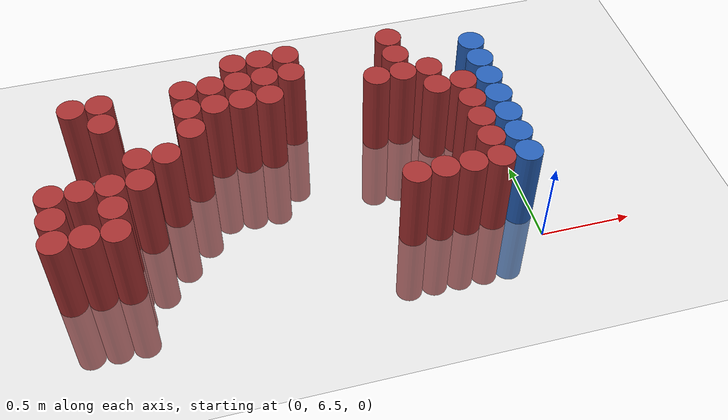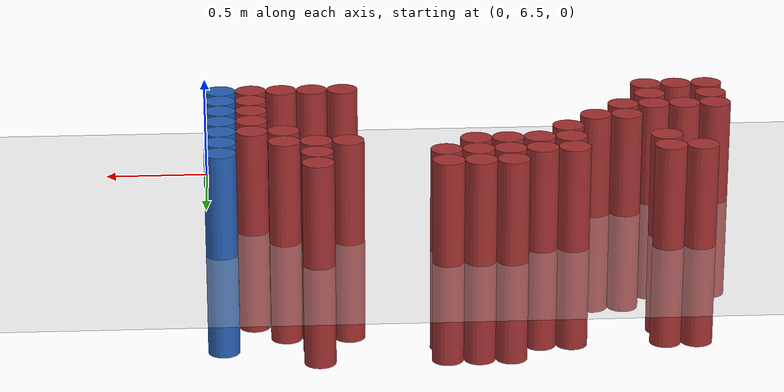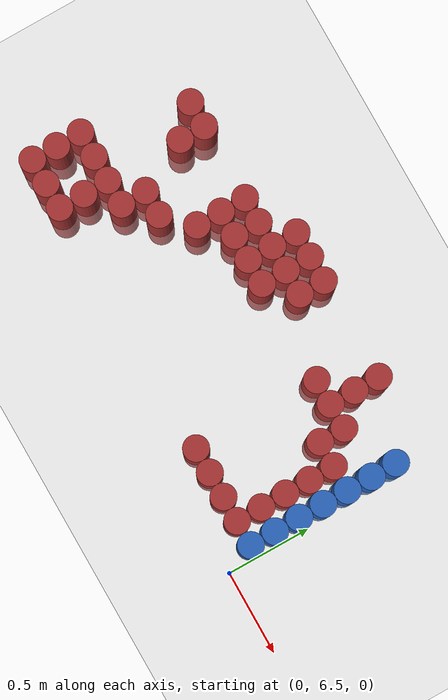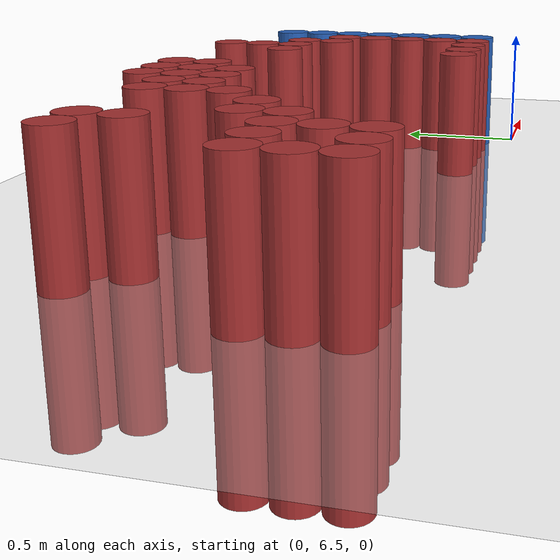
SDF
<sdf version="1.6">
 <world name="default">
  <model name="ground_plane">
   <static>1</static>
   <link name="link">
    <collision name="collision">
     <geometry><plane><normal>0 0 1</normal><size>100 100</size></plane></geometry>
     <surface><friction><ode><mu>100</mu><mu2>50</mu2></ode></friction></surface>
    </collision>
    <visual name="visual">
     <cast_shadows>0</cast_shadows>
     <geometry><plane><normal>0 0 1</normal><size>100 100</size></plane></geometry>
     <material>
      <script><uri>file://media/materials/scripts/gazebo.material</uri><name>Gazebo/Grey</name></script>
     </material>
    </visual>
   </link>
  </model>
  <model name="unit_cylinder_164">
   <static>1</static>
   <pose>-2.475000 6.675000 0.000000 0.000000 0.000000 0.000000</pose>
   <link name="link">
    <inertial>
     <mass>1</mass>
     <inertia><ixx>0.145833</ixx><ixy>0</ixy><ixz>0</ixz><iyy>0.145833</iyy><iyz>0</iyz><izz>0.125</izz></inertia>
    </inertial>
    <collision name="collision">
     <geometry><cylinder><radius>0.075000</radius><length>1</length></cylinder></geometry>
    </collision>
    <visual name="visual">
     <geometry><cylinder><radius>0.075000</radius><length>1</length></cylinder></geometry>
     <material>
      <ambient>0.648000 0.192000 0.192000 1</ambient>
      <diffuse>0.648000 0.192000 0.192000 1</diffuse>
     </material>
     <material>
      <script><name>Gazebo/Grey</name><uri>file://media/materials/scripts/gazebo.material</uri></script>
     </material>
    </visual>
   </link>
  </model>
  <model name="unit_cylinder_165">
   <static>1</static>
   <pose>-2.475000 6.825000 0.000000 0.000000 0.000000 0.000000</pose>
   <link name="link">
    <inertial>
     <mass>1</mass>
     <inertia><ixx>0.145833</ixx><ixy>0</ixy><ixz>0</ixz><iyy>0.145833</iyy><iyz>0</iyz><izz>0.125</izz></inertia>
    </inertial>
    <collision name="collision">
     <geometry><cylinder><radius>0.075000</radius><length>1</length></cylinder></geometry>
    </collision>
    <visual name="visual">
     <geometry><cylinder><radius>0.075000</radius><length>1</length></cylinder></geometry>
     <material>
      <ambient>0.648000 0.192000 0.192000 1</ambient>
      <diffuse>0.648000 0.192000 0.192000 1</diffuse>
     </material>
     <material>
      <script><name>Gazebo/Grey</name><uri>file://media/materials/scripts/gazebo.material</uri></script>
     </material>
    </visual>
   </link>
  </model>
  <model name="unit_cylinder_166">
   <static>1</static>
   <pose>-2.475000 6.975000 0.000000 0.000000 0.000000 0.000000</pose>
   <link name="link">
    <inertial>
     <mass>1</mass>
     <inertia><ixx>0.145833</ixx><ixy>0</ixy><ixz>0</ixz><iyy>0.145833</iyy><iyz>0</iyz><izz>0.125</izz></inertia>
    </inertial>
    <collision name="collision">
     <geometry><cylinder><radius>0.075000</radius><length>1</length></cylinder></geometry>
    </collision>
    <visual name="visual">
     <geometry><cylinder><radius>0.075000</radius><length>1</length></cylinder></geometry>
     <material>
      <ambient>0.648000 0.192000 0.192000 1</ambient>
      <diffuse>0.648000 0.192000 0.192000 1</diffuse>
     </material>
     <material>
      <script><name>Gazebo/Grey</name><uri>file://media/materials/scripts/gazebo.material</uri></script>
     </material>
    </visual>
   </link>
  </model>
  <model name="unit_cylinder_169">
   <static>1</static>
   <pose>-2.325000 6.675000 0.000000 0.000000 0.000000 0.000000</pose>
   <link name="link">
    <inertial>
     <mass>1</mass>
     <inertia><ixx>0.145833</ixx><ixy>0</ixy><ixz>0</ixz><iyy>0.145833</iyy><iyz>0</iyz><izz>0.125</izz></inertia>
    </inertial>
    <collision name="collision">
     <geometry><cylinder><radius>0.075000</radius><length>1</length></cylinder></geometry>
    </collision>
    <visual name="visual">
     <geometry><cylinder><radius>0.075000</radius><length>1</length></cylinder></geometry>
     <material>
      <ambient>0.648000 0.192000 0.192000 1</ambient>
      <diffuse>0.648000 0.192000 0.192000 1</diffuse>
     </material>
     <material>
      <script><name>Gazebo/Grey</name><uri>file://media/materials/scripts/gazebo.material</uri></script>
     </material>
    </visual>
   </link>
  </model>
  <model name="unit_cylinder_170">
   <static>1</static>
   <pose>-2.325000 6.975000 0.000000 0.000000 0.000000 0.000000</pose>
   <link name="link">
    <inertial>
     <mass>1</mass>
     <inertia><ixx>0.145833</ixx><ixy>0</ixy><ixz>0</ixz><iyy>0.145833</iyy><iyz>0</iyz><izz>0.125</izz></inertia>
    </inertial>
    <collision name="collision">
     <geometry><cylinder><radius>0.075000</radius><length>1</length></cylinder></geometry>
    </collision>
    <visual name="visual">
     <geometry><cylinder><radius>0.075000</radius><length>1</length></cylinder></geometry>
     <material>
      <ambient>0.648000 0.192000 0.192000 1</ambient>
      <diffuse>0.648000 0.192000 0.192000 1</diffuse>
     </material>
     <material>
      <script><name>Gazebo/Grey</name><uri>file://media/materials/scripts/gazebo.material</uri></script>
     </material>
    </visual>
   </link>
  </model>
  <model name="unit_cylinder_171">
   <static>1</static>
   <pose>-2.325000 7.575000 0.000000 0.000000 0.000000 0.000000</pose>
   <link name="link">
    <inertial>
     <mass>1</mass>
     <inertia><ixx>0.145833</ixx><ixy>0</ixy><ixz>0</ixz><iyy>0.145833</iyy><iyz>0</iyz><izz>0.125</izz></inertia>
    </inertial>
    <collision name="collision">
     <geometry><cylinder><radius>0.075000</radius><length>1</length></cylinder></geometry>
    </collision>
    <visual name="visual">
     <geometry><cylinder><radius>0.075000</radius><length>1</length></cylinder></geometry>
     <material>
      <ambient>0.648000 0.192000 0.192000 1</ambient>
      <diffuse>0.648000 0.192000 0.192000 1</diffuse>
     </material>
     <material>
      <script><name>Gazebo/Grey</name><uri>file://media/materials/scripts/gazebo.material</uri></script>
     </material>
    </visual>
   </link>
  </model>
  <model name="unit_cylinder_176">
   <static>1</static>
   <pose>-2.175000 6.675000 0.000000 0.000000 0.000000 0.000000</pose>
   <link name="link">
    <inertial>
     <mass>1</mass>
     <inertia><ixx>0.145833</ixx><ixy>0</ixy><ixz>0</ixz><iyy>0.145833</iyy><iyz>0</iyz><izz>0.125</izz></inertia>
    </inertial>
    <collision name="collision">
     <geometry><cylinder><radius>0.075000</radius><length>1</length></cylinder></geometry>
    </collision>
    <visual name="visual">
     <geometry><cylinder><radius>0.075000</radius><length>1</length></cylinder></geometry>
     <material>
      <ambient>0.648000 0.192000 0.192000 1</ambient>
      <diffuse>0.648000 0.192000 0.192000 1</diffuse>
     </material>
     <material>
      <script><name>Gazebo/Grey</name><uri>file://media/materials/scripts/gazebo.material</uri></script>
     </material>
    </visual>
   </link>
  </model>
  <model name="unit_cylinder_177">
   <static>1</static>
   <pose>-2.175000 6.825000 0.000000 0.000000 0.000000 0.000000</pose>
   <link name="link">
    <inertial>
     <mass>1</mass>
     <inertia><ixx>0.145833</ixx><ixy>0</ixy><ixz>0</ixz><iyy>0.145833</iyy><iyz>0</iyz><izz>0.125</izz></inertia>
    </inertial>
    <collision name="collision">
     <geometry><cylinder><radius>0.075000</radius><length>1</length></cylinder></geometry>
    </collision>
    <visual name="visual">
     <geometry><cylinder><radius>0.075000</radius><length>1</length></cylinder></geometry>
     <material>
      <ambient>0.648000 0.192000 0.192000 1</ambient>
      <diffuse>0.648000 0.192000 0.192000 1</diffuse>
     </material>
     <material>
      <script><name>Gazebo/Grey</name><uri>file://media/materials/scripts/gazebo.material</uri></script>
     </material>
    </visual>
   </link>
  </model>
  <model name="unit_cylinder_178">
   <static>1</static>
   <pose>-2.175000 6.975000 0.000000 0.000000 0.000000 0.000000</pose>
   <link name="link">
    <inertial>
     <mass>1</mass>
     <inertia><ixx>0.145833</ixx><ixy>0</ixy><ixz>0</ixz><iyy>0.145833</iyy><iyz>0</iyz><izz>0.125</izz></inertia>
    </inertial>
    <collision name="collision">
     <geometry><cylinder><radius>0.075000</radius><length>1</length></cylinder></geometry>
    </collision>
    <visual name="visual">
     <geometry><cylinder><radius>0.075000</radius><length>1</length></cylinder></geometry>
     <material>
      <ambient>0.648000 0.192000 0.192000 1</ambient>
      <diffuse>0.648000 0.192000 0.192000 1</diffuse>
     </material>
     <material>
      <script><name>Gazebo/Grey</name><uri>file://media/materials/scripts/gazebo.material</uri></script>
     </material>
    </visual>
   </link>
  </model>
  <model name="unit_cylinder_179">
   <static>1</static>
   <pose>-2.175000 7.425000 0.000000 0.000000 0.000000 0.000000</pose>
   <link name="link">
    <inertial>
     <mass>1</mass>
     <inertia><ixx>0.145833</ixx><ixy>0</ixy><ixz>0</ixz><iyy>0.145833</iyy><iyz>0</iyz><izz>0.125</izz></inertia>
    </inertial>
    <collision name="collision">
     <geometry><cylinder><radius>0.075000</radius><length>1</length></cylinder></geometry>
    </collision>
    <visual name="visual">
     <geometry><cylinder><radius>0.075000</radius><length>1</length></cylinder></geometry>
     <material>
      <ambient>0.648000 0.192000 0.192000 1</ambient>
      <diffuse>0.648000 0.192000 0.192000 1</diffuse>
     </material>
     <material>
      <script><name>Gazebo/Grey</name><uri>file://media/materials/scripts/gazebo.material</uri></script>
     </material>
    </visual>
   </link>
  </model>
  <model name="unit_cylinder_180">
   <static>1</static>
   <pose>-2.175000 7.575000 0.000000 0.000000 0.000000 0.000000</pose>
   <link name="link">
    <inertial>
     <mass>1</mass>
     <inertia><ixx>0.145833</ixx><ixy>0</ixy><ixz>0</ixz><iyy>0.145833</iyy><iyz>0</iyz><izz>0.125</izz></inertia>
    </inertial>
    <collision name="collision">
     <geometry><cylinder><radius>0.075000</radius><length>1</length></cylinder></geometry>
    </collision>
    <visual name="visual">
     <geometry><cylinder><radius>0.075000</radius><length>1</length></cylinder></geometry>
     <material>
      <ambient>0.648000 0.192000 0.192000 1</ambient>
      <diffuse>0.648000 0.192000 0.192000 1</diffuse>
     </material>
     <material>
      <script><name>Gazebo/Grey</name><uri>file://media/materials/scripts/gazebo.material</uri></script>
     </material>
    </visual>
   </link>
  </model>
  <model name="unit_cylinder_185">
   <static>1</static>
   <pose>-2.025000 6.975000 0.000000 0.000000 0.000000 0.000000</pose>
   <link name="link">
    <inertial>
     <mass>1</mass>
     <inertia><ixx>0.145833</ixx><ixy>0</ixy><ixz>0</ixz><iyy>0.145833</iyy><iyz>0</iyz><izz>0.125</izz></inertia>
    </inertial>
    <collision name="collision">
     <geometry><cylinder><radius>0.075000</radius><length>1</length></cylinder></geometry>
    </collision>
    <visual name="visual">
     <geometry><cylinder><radius>0.075000</radius><length>1</length></cylinder></geometry>
     <material>
      <ambient>0.648000 0.192000 0.192000 1</ambient>
      <diffuse>0.648000 0.192000 0.192000 1</diffuse>
     </material>
     <material>
      <script><name>Gazebo/Grey</name><uri>file://media/materials/scripts/gazebo.material</uri></script>
     </material>
    </visual>
   </link>
  </model>
  <model name="unit_cylinder_186">
   <static>1</static>
   <pose>-2.025000 7.125000 0.000000 0.000000 0.000000 0.000000</pose>
   <link name="link">
    <inertial>
     <mass>1</mass>
     <inertia><ixx>0.145833</ixx><ixy>0</ixy><ixz>0</ixz><iyy>0.145833</iyy><iyz>0</iyz><izz>0.125</izz></inertia>
    </inertial>
    <collision name="collision">
     <geometry><cylinder><radius>0.075000</radius><length>1</length></cylinder></geometry>
    </collision>
    <visual name="visual">
     <geometry><cylinder><radius>0.075000</radius><length>1</length></cylinder></geometry>
     <material>
      <ambient>0.648000 0.192000 0.192000 1</ambient>
      <diffuse>0.648000 0.192000 0.192000 1</diffuse>
     </material>
     <material>
      <script><name>Gazebo/Grey</name><uri>file://media/materials/scripts/gazebo.material</uri></script>
     </material>
    </visual>
   </link>
  </model>
  <model name="unit_cylinder_192">
   <static>1</static>
   <pose>-1.875000 7.125000 0.000000 0.000000 0.000000 0.000000</pose>
   <link name="link">
    <inertial>
     <mass>1</mass>
     <inertia><ixx>0.145833</ixx><ixy>0</ixy><ixz>0</ixz><iyy>0.145833</iyy><iyz>0</iyz><izz>0.125</izz></inertia>
    </inertial>
    <collision name="collision">
     <geometry><cylinder><radius>0.075000</radius><length>1</length></cylinder></geometry>
    </collision>
    <visual name="visual">
     <geometry><cylinder><radius>0.075000</radius><length>1</length></cylinder></geometry>
     <material>
      <ambient>0.648000 0.192000 0.192000 1</ambient>
      <diffuse>0.648000 0.192000 0.192000 1</diffuse>
     </material>
     <material>
      <script><name>Gazebo/Grey</name><uri>file://media/materials/scripts/gazebo.material</uri></script>
     </material>
    </visual>
   </link>
  </model>
  <model name="unit_cylinder_198">
   <static>1</static>
   <pose>-1.725000 7.275000 0.000000 0.000000 0.000000 0.000000</pose>
   <link name="link">
    <inertial>
     <mass>1</mass>
     <inertia><ixx>0.145833</ixx><ixy>0</ixy><ixz>0</ixz><iyy>0.145833</iyy><iyz>0</iyz><izz>0.125</izz></inertia>
    </inertial>
    <collision name="collision">
     <geometry><cylinder><radius>0.075000</radius><length>1</length></cylinder></geometry>
    </collision>
    <visual name="visual">
     <geometry><cylinder><radius>0.075000</radius><length>1</length></cylinder></geometry>
     <material>
      <ambient>0.648000 0.192000 0.192000 1</ambient>
      <diffuse>0.648000 0.192000 0.192000 1</diffuse>
     </material>
     <material>
      <script><name>Gazebo/Grey</name><uri>file://media/materials/scripts/gazebo.material</uri></script>
     </material>
    </visual>
   </link>
  </model>
  <model name="unit_cylinder_199">
   <static>1</static>
   <pose>-1.725000 7.425000 0.000000 0.000000 0.000000 0.000000</pose>
   <link name="link">
    <inertial>
     <mass>1</mass>
     <inertia><ixx>0.145833</ixx><ixy>0</ixy><ixz>0</ixz><iyy>0.145833</iyy><iyz>0</iyz><izz>0.125</izz></inertia>
    </inertial>
    <collision name="collision">
     <geometry><cylinder><radius>0.075000</radius><length>1</length></cylinder></geometry>
    </collision>
    <visual name="visual">
     <geometry><cylinder><radius>0.075000</radius><length>1</length></cylinder></geometry>
     <material>
      <ambient>0.648000 0.192000 0.192000 1</ambient>
      <diffuse>0.648000 0.192000 0.192000 1</diffuse>
     </material>
     <material>
      <script><name>Gazebo/Grey</name><uri>file://media/materials/scripts/gazebo.material</uri></script>
     </material>
    </visual>
   </link>
  </model>
  <model name="unit_cylinder_200">
   <static>1</static>
   <pose>-1.725000 7.575000 0.000000 0.000000 0.000000 0.000000</pose>
   <link name="link">
    <inertial>
     <mass>1</mass>
     <inertia><ixx>0.145833</ixx><ixy>0</ixy><ixz>0</ixz><iyy>0.145833</iyy><iyz>0</iyz><izz>0.125</izz></inertia>
    </inertial>
    <collision name="collision">
     <geometry><cylinder><radius>0.075000</radius><length>1</length></cylinder></geometry>
    </collision>
    <visual name="visual">
     <geometry><cylinder><radius>0.075000</radius><length>1</length></cylinder></geometry>
     <material>
      <ambient>0.648000 0.192000 0.192000 1</ambient>
      <diffuse>0.648000 0.192000 0.192000 1</diffuse>
     </material>
     <material>
      <script><name>Gazebo/Grey</name><uri>file://media/materials/scripts/gazebo.material</uri></script>
     </material>
    </visual>
   </link>
  </model>
  <model name="unit_cylinder_201">
   <static>1</static>
   <pose>-1.575000 7.425000 0.000000 0.000000 0.000000 0.000000</pose>
   <link name="link">
    <inertial>
     <mass>1</mass>
     <inertia><ixx>0.145833</ixx><ixy>0</ixy><ixz>0</ixz><iyy>0.145833</iyy><iyz>0</iyz><izz>0.125</izz></inertia>
    </inertial>
    <collision name="collision">
     <geometry><cylinder><radius>0.075000</radius><length>1</length></cylinder></geometry>
    </collision>
    <visual name="visual">
     <geometry><cylinder><radius>0.075000</radius><length>1</length></cylinder></geometry>
     <material>
      <ambient>0.648000 0.192000 0.192000 1</ambient>
      <diffuse>0.648000 0.192000 0.192000 1</diffuse>
     </material>
     <material>
      <script><name>Gazebo/Grey</name><uri>file://media/materials/scripts/gazebo.material</uri></script>
     </material>
    </visual>
   </link>
  </model>
  <model name="unit_cylinder_202">
   <static>1</static>
   <pose>-1.575000 7.575000 0.000000 0.000000 0.000000 0.000000</pose>
   <link name="link">
    <inertial>
     <mass>1</mass>
     <inertia><ixx>0.145833</ixx><ixy>0</ixy><ixz>0</ixz><iyy>0.145833</iyy><iyz>0</iyz><izz>0.125</izz></inertia>
    </inertial>
    <collision name="collision">
     <geometry><cylinder><radius>0.075000</radius><length>1</length></cylinder></geometry>
    </collision>
    <visual name="visual">
     <geometry><cylinder><radius>0.075000</radius><length>1</length></cylinder></geometry>
     <material>
      <ambient>0.648000 0.192000 0.192000 1</ambient>
      <diffuse>0.648000 0.192000 0.192000 1</diffuse>
     </material>
     <material>
      <script><name>Gazebo/Grey</name><uri>file://media/materials/scripts/gazebo.material</uri></script>
     </material>
    </visual>
   </link>
  </model>
  <model name="unit_cylinder_203">
   <static>1</static>
   <pose>-1.425000 7.425000 0.000000 0.000000 0.000000 0.000000</pose>
   <link name="link">
    <inertial>
     <mass>1</mass>
     <inertia><ixx>0.145833</ixx><ixy>0</ixy><ixz>0</ixz><iyy>0.145833</iyy><iyz>0</iyz><izz>0.125</izz></inertia>
    </inertial>
    <collision name="collision">
     <geometry><cylinder><radius>0.075000</radius><length>1</length></cylinder></geometry>
    </collision>
    <visual name="visual">
     <geometry><cylinder><radius>0.075000</radius><length>1</length></cylinder></geometry>
     <material>
      <ambient>0.648000 0.192000 0.192000 1</ambient>
      <diffuse>0.648000 0.192000 0.192000 1</diffuse>
     </material>
     <material>
      <script><name>Gazebo/Grey</name><uri>file://media/materials/scripts/gazebo.material</uri></script>
     </material>
    </visual>
   </link>
  </model>
  <model name="unit_cylinder_204">
   <static>1</static>
   <pose>-1.425000 7.575000 0.000000 0.000000 0.000000 0.000000</pose>
   <link name="link">
    <inertial>
     <mass>1</mass>
     <inertia><ixx>0.145833</ixx><ixy>0</ixy><ixz>0</ixz><iyy>0.145833</iyy><iyz>0</iyz><izz>0.125</izz></inertia>
    </inertial>
    <collision name="collision">
     <geometry><cylinder><radius>0.075000</radius><length>1</length></cylinder></geometry>
    </collision>
    <visual name="visual">
     <geometry><cylinder><radius>0.075000</radius><length>1</length></cylinder></geometry>
     <material>
      <ambient>0.648000 0.192000 0.192000 1</ambient>
      <diffuse>0.648000 0.192000 0.192000 1</diffuse>
     </material>
     <material>
      <script><name>Gazebo/Grey</name><uri>file://media/materials/scripts/gazebo.material</uri></script>
     </material>
    </visual>
   </link>
  </model>
  <model name="unit_cylinder_205">
   <static>1</static>
   <pose>-1.425000 7.725000 0.000000 0.000000 0.000000 0.000000</pose>
   <link name="link">
    <inertial>
     <mass>1</mass>
     <inertia><ixx>0.145833</ixx><ixy>0</ixy><ixz>0</ixz><iyy>0.145833</iyy><iyz>0</iyz><izz>0.125</izz></inertia>
    </inertial>
    <collision name="collision">
     <geometry><cylinder><radius>0.075000</radius><length>1</length></cylinder></geometry>
    </collision>
    <visual name="visual">
     <geometry><cylinder><radius>0.075000</radius><length>1</length></cylinder></geometry>
     <material>
      <ambient>0.648000 0.192000 0.192000 1</ambient>
      <diffuse>0.648000 0.192000 0.192000 1</diffuse>
     </material>
     <material>
      <script><name>Gazebo/Grey</name><uri>file://media/materials/scripts/gazebo.material</uri></script>
     </material>
    </visual>
   </link>
  </model>
  <model name="unit_cylinder_206">
   <static>1</static>
   <pose>-1.275000 7.425000 0.000000 0.000000 0.000000 0.000000</pose>
   <link name="link">
    <inertial>
     <mass>1</mass>
     <inertia><ixx>0.145833</ixx><ixy>0</ixy><ixz>0</ixz><iyy>0.145833</iyy><iyz>0</iyz><izz>0.125</izz></inertia>
    </inertial>
    <collision name="collision">
     <geometry><cylinder><radius>0.075000</radius><length>1</length></cylinder></geometry>
    </collision>
    <visual name="visual">
     <geometry><cylinder><radius>0.075000</radius><length>1</length></cylinder></geometry>
     <material>
      <ambient>0.648000 0.192000 0.192000 1</ambient>
      <diffuse>0.648000 0.192000 0.192000 1</diffuse>
     </material>
     <material>
      <script><name>Gazebo/Grey</name><uri>file://media/materials/scripts/gazebo.material</uri></script>
     </material>
    </visual>
   </link>
  </model>
  <model name="unit_cylinder_207">
   <static>1</static>
   <pose>-1.275000 7.575000 0.000000 0.000000 0.000000 0.000000</pose>
   <link name="link">
    <inertial>
     <mass>1</mass>
     <inertia><ixx>0.145833</ixx><ixy>0</ixy><ixz>0</ixz><iyy>0.145833</iyy><iyz>0</iyz><izz>0.125</izz></inertia>
    </inertial>
    <collision name="collision">
     <geometry><cylinder><radius>0.075000</radius><length>1</length></cylinder></geometry>
    </collision>
    <visual name="visual">
     <geometry><cylinder><radius>0.075000</radius><length>1</length></cylinder></geometry>
     <material>
      <ambient>0.648000 0.192000 0.192000 1</ambient>
      <diffuse>0.648000 0.192000 0.192000 1</diffuse>
     </material>
     <material>
      <script><name>Gazebo/Grey</name><uri>file://media/materials/scripts/gazebo.material</uri></script>
     </material>
    </visual>
   </link>
  </model>
  <model name="unit_cylinder_208">
   <static>1</static>
   <pose>-1.275000 7.725000 0.000000 0.000000 0.000000 0.000000</pose>
   <link name="link">
    <inertial>
     <mass>1</mass>
     <inertia><ixx>0.145833</ixx><ixy>0</ixy><ixz>0</ixz><iyy>0.145833</iyy><iyz>0</iyz><izz>0.125</izz></inertia>
    </inertial>
    <collision name="collision">
     <geometry><cylinder><radius>0.075000</radius><length>1</length></cylinder></geometry>
    </collision>
    <visual name="visual">
     <geometry><cylinder><radius>0.075000</radius><length>1</length></cylinder></geometry>
     <material>
      <ambient>0.648000 0.192000 0.192000 1</ambient>
      <diffuse>0.648000 0.192000 0.192000 1</diffuse>
     </material>
     <material>
      <script><name>Gazebo/Grey</name><uri>file://media/materials/scripts/gazebo.material</uri></script>
     </material>
    </visual>
   </link>
  </model>
  <model name="unit_cylinder_209">
   <static>1</static>
   <pose>-1.125000 7.575000 0.000000 0.000000 0.000000 0.000000</pose>
   <link name="link">
    <inertial>
     <mass>1</mass>
     <inertia><ixx>0.145833</ixx><ixy>0</ixy><ixz>0</ixz><iyy>0.145833</iyy><iyz>0</iyz><izz>0.125</izz></inertia>
    </inertial>
    <collision name="collision">
     <geometry><cylinder><radius>0.075000</radius><length>1</length></cylinder></geometry>
    </collision>
    <visual name="visual">
     <geometry><cylinder><radius>0.075000</radius><length>1</length></cylinder></geometry>
     <material>
      <ambient>0.648000 0.192000 0.192000 1</ambient>
      <diffuse>0.648000 0.192000 0.192000 1</diffuse>
     </material>
     <material>
      <script><name>Gazebo/Grey</name><uri>file://media/materials/scripts/gazebo.material</uri></script>
     </material>
    </visual>
   </link>
  </model>
  <model name="unit_cylinder_210">
   <static>1</static>
   <pose>-1.125000 7.725000 0.000000 0.000000 0.000000 0.000000</pose>
   <link name="link">
    <inertial>
     <mass>1</mass>
     <inertia><ixx>0.145833</ixx><ixy>0</ixy><ixz>0</ixz><iyy>0.145833</iyy><iyz>0</iyz><izz>0.125</izz></inertia>
    </inertial>
    <collision name="collision">
     <geometry><cylinder><radius>0.075000</radius><length>1</length></cylinder></geometry>
    </collision>
    <visual name="visual">
     <geometry><cylinder><radius>0.075000</radius><length>1</length></cylinder></geometry>
     <material>
      <ambient>0.648000 0.192000 0.192000 1</ambient>
      <diffuse>0.648000 0.192000 0.192000 1</diffuse>
     </material>
     <material>
      <script><name>Gazebo/Grey</name><uri>file://media/materials/scripts/gazebo.material</uri></script>
     </material>
    </visual>
   </link>
  </model>
  <model name="unit_cylinder_216">
   <static>1</static>
   <pose>-0.675000 6.675000 0.000000 0.000000 0.000000 0.000000</pose>
   <link name="link">
    <inertial>
     <mass>1</mass>
     <inertia><ixx>0.145833</ixx><ixy>0</ixy><ixz>0</ixz><iyy>0.145833</iyy><iyz>0</iyz><izz>0.125</izz></inertia>
    </inertial>
    <collision name="collision">
     <geometry><cylinder><radius>0.075000</radius><length>1</length></cylinder></geometry>
    </collision>
    <visual name="visual">
     <geometry><cylinder><radius>0.075000</radius><length>1</length></cylinder></geometry>
     <material>
      <ambient>0.648000 0.192000 0.192000 1</ambient>
      <diffuse>0.648000 0.192000 0.192000 1</diffuse>
     </material>
     <material>
      <script><name>Gazebo/Grey</name><uri>file://media/materials/scripts/gazebo.material</uri></script>
     </material>
    </visual>
   </link>
  </model>
  <model name="unit_cylinder_217">
   <static>1</static>
   <pose>-0.675000 7.425000 0.000000 0.000000 0.000000 0.000000</pose>
   <link name="link">
    <inertial>
     <mass>1</mass>
     <inertia><ixx>0.145833</ixx><ixy>0</ixy><ixz>0</ixz><iyy>0.145833</iyy><iyz>0</iyz><izz>0.125</izz></inertia>
    </inertial>
    <collision name="collision">
     <geometry><cylinder><radius>0.075000</radius><length>1</length></cylinder></geometry>
    </collision>
    <visual name="visual">
     <geometry><cylinder><radius>0.075000</radius><length>1</length></cylinder></geometry>
     <material>
      <ambient>0.648000 0.192000 0.192000 1</ambient>
      <diffuse>0.648000 0.192000 0.192000 1</diffuse>
     </material>
     <material>
      <script><name>Gazebo/Grey</name><uri>file://media/materials/scripts/gazebo.material</uri></script>
     </material>
    </visual>
   </link>
  </model>
  <model name="unit_cylinder_225">
   <static>1</static>
   <pose>-0.525000 6.675000 0.000000 0.000000 0.000000 0.000000</pose>
   <link name="link">
    <inertial>
     <mass>1</mass>
     <inertia><ixx>0.145833</ixx><ixy>0</ixy><ixz>0</ixz><iyy>0.145833</iyy><iyz>0</iyz><izz>0.125</izz></inertia>
    </inertial>
    <collision name="collision">
     <geometry><cylinder><radius>0.075000</radius><length>1</length></cylinder></geometry>
    </collision>
    <visual name="visual">
     <geometry><cylinder><radius>0.075000</radius><length>1</length></cylinder></geometry>
     <material>
      <ambient>0.648000 0.192000 0.192000 1</ambient>
      <diffuse>0.648000 0.192000 0.192000 1</diffuse>
     </material>
     <material>
      <script><name>Gazebo/Grey</name><uri>file://media/materials/scripts/gazebo.material</uri></script>
     </material>
    </visual>
   </link>
  </model>
  <model name="unit_cylinder_226">
   <static>1</static>
   <pose>-0.525000 7.425000 0.000000 0.000000 0.000000 0.000000</pose>
   <link name="link">
    <inertial>
     <mass>1</mass>
     <inertia><ixx>0.145833</ixx><ixy>0</ixy><ixz>0</ixz><iyy>0.145833</iyy><iyz>0</iyz><izz>0.125</izz></inertia>
    </inertial>
    <collision name="collision">
     <geometry><cylinder><radius>0.075000</radius><length>1</length></cylinder></geometry>
    </collision>
    <visual name="visual">
     <geometry><cylinder><radius>0.075000</radius><length>1</length></cylinder></geometry>
     <material>
      <ambient>0.648000 0.192000 0.192000 1</ambient>
      <diffuse>0.648000 0.192000 0.192000 1</diffuse>
     </material>
     <material>
      <script><name>Gazebo/Grey</name><uri>file://media/materials/scripts/gazebo.material</uri></script>
     </material>
    </visual>
   </link>
  </model>
  <model name="unit_cylinder_227">
   <static>1</static>
   <pose>-0.525000 7.575000 0.000000 0.000000 0.000000 0.000000</pose>
   <link name="link">
    <inertial>
     <mass>1</mass>
     <inertia><ixx>0.145833</ixx><ixy>0</ixy><ixz>0</ixz><iyy>0.145833</iyy><iyz>0</iyz><izz>0.125</izz></inertia>
    </inertial>
    <collision name="collision">
     <geometry><cylinder><radius>0.075000</radius><length>1</length></cylinder></geometry>
    </collision>
    <visual name="visual">
     <geometry><cylinder><radius>0.075000</radius><length>1</length></cylinder></geometry>
     <material>
      <ambient>0.648000 0.192000 0.192000 1</ambient>
      <diffuse>0.648000 0.192000 0.192000 1</diffuse>
     </material>
     <material>
      <script><name>Gazebo/Grey</name><uri>file://media/materials/scripts/gazebo.material</uri></script>
     </material>
    </visual>
   </link>
  </model>
  <model name="unit_cylinder_228">
   <static>1</static>
   <pose>-0.525000 7.725000 0.000000 0.000000 0.000000 0.000000</pose>
   <link name="link">
    <inertial>
     <mass>1</mass>
     <inertia><ixx>0.145833</ixx><ixy>0</ixy><ixz>0</ixz><iyy>0.145833</iyy><iyz>0</iyz><izz>0.125</izz></inertia>
    </inertial>
    <collision name="collision">
     <geometry><cylinder><radius>0.075000</radius><length>1</length></cylinder></geometry>
    </collision>
    <visual name="visual">
     <geometry><cylinder><radius>0.075000</radius><length>1</length></cylinder></geometry>
     <material>
      <ambient>0.648000 0.192000 0.192000 1</ambient>
      <diffuse>0.648000 0.192000 0.192000 1</diffuse>
     </material>
     <material>
      <script><name>Gazebo/Grey</name><uri>file://media/materials/scripts/gazebo.material</uri></script>
     </material>
    </visual>
   </link>
  </model>
  <model name="unit_cylinder_236">
   <static>1</static>
   <pose>-0.375000 6.675000 0.000000 0.000000 0.000000 0.000000</pose>
   <link name="link">
    <inertial>
     <mass>1</mass>
     <inertia><ixx>0.145833</ixx><ixy>0</ixy><ixz>0</ixz><iyy>0.145833</iyy><iyz>0</iyz><izz>0.125</izz></inertia>
    </inertial>
    <collision name="collision">
     <geometry><cylinder><radius>0.075000</radius><length>1</length></cylinder></geometry>
    </collision>
    <visual name="visual">
     <geometry><cylinder><radius>0.075000</radius><length>1</length></cylinder></geometry>
     <material>
      <ambient>0.648000 0.192000 0.192000 1</ambient>
      <diffuse>0.648000 0.192000 0.192000 1</diffuse>
     </material>
     <material>
      <script><name>Gazebo/Grey</name><uri>file://media/materials/scripts/gazebo.material</uri></script>
     </material>
    </visual>
   </link>
  </model>
  <model name="unit_cylinder_237">
   <static>1</static>
   <pose>-0.375000 7.275000 0.000000 0.000000 0.000000 0.000000</pose>
   <link name="link">
    <inertial>
     <mass>1</mass>
     <inertia><ixx>0.145833</ixx><ixy>0</ixy><ixz>0</ixz><iyy>0.145833</iyy><iyz>0</iyz><izz>0.125</izz></inertia>
    </inertial>
    <collision name="collision">
     <geometry><cylinder><radius>0.075000</radius><length>1</length></cylinder></geometry>
    </collision>
    <visual name="visual">
     <geometry><cylinder><radius>0.075000</radius><length>1</length></cylinder></geometry>
     <material>
      <ambient>0.648000 0.192000 0.192000 1</ambient>
      <diffuse>0.648000 0.192000 0.192000 1</diffuse>
     </material>
     <material>
      <script><name>Gazebo/Grey</name><uri>file://media/materials/scripts/gazebo.material</uri></script>
     </material>
    </visual>
   </link>
  </model>
  <model name="unit_cylinder_238">
   <static>1</static>
   <pose>-0.375000 7.425000 0.000000 0.000000 0.000000 0.000000</pose>
   <link name="link">
    <inertial>
     <mass>1</mass>
     <inertia><ixx>0.145833</ixx><ixy>0</ixy><ixz>0</ixz><iyy>0.145833</iyy><iyz>0</iyz><izz>0.125</izz></inertia>
    </inertial>
    <collision name="collision">
     <geometry><cylinder><radius>0.075000</radius><length>1</length></cylinder></geometry>
    </collision>
    <visual name="visual">
     <geometry><cylinder><radius>0.075000</radius><length>1</length></cylinder></geometry>
     <material>
      <ambient>0.648000 0.192000 0.192000 1</ambient>
      <diffuse>0.648000 0.192000 0.192000 1</diffuse>
     </material>
     <material>
      <script><name>Gazebo/Grey</name><uri>file://media/materials/scripts/gazebo.material</uri></script>
     </material>
    </visual>
   </link>
  </model>
  <model name="unit_cylinder_248">
   <static>1</static>
   <pose>-0.225000 6.675000 0.000000 0.000000 0.000000 0.000000</pose>
   <link name="link">
    <inertial>
     <mass>1</mass>
     <inertia><ixx>0.145833</ixx><ixy>0</ixy><ixz>0</ixz><iyy>0.145833</iyy><iyz>0</iyz><izz>0.125</izz></inertia>
    </inertial>
    <collision name="collision">
     <geometry><cylinder><radius>0.075000</radius><length>1</length></cylinder></geometry>
    </collision>
    <visual name="visual">
     <geometry><cylinder><radius>0.075000</radius><length>1</length></cylinder></geometry>
     <material>
      <ambient>0.648000 0.192000 0.192000 1</ambient>
      <diffuse>0.648000 0.192000 0.192000 1</diffuse>
     </material>
     <material>
      <script><name>Gazebo/Grey</name><uri>file://media/materials/scripts/gazebo.material</uri></script>
     </material>
    </visual>
   </link>
  </model>
  <model name="unit_cylinder_249">
   <static>1</static>
   <pose>-0.225000 6.825000 0.000000 0.000000 0.000000 0.000000</pose>
   <link name="link">
    <inertial>
     <mass>1</mass>
     <inertia><ixx>0.145833</ixx><ixy>0</ixy><ixz>0</ixz><iyy>0.145833</iyy><iyz>0</iyz><izz>0.125</izz></inertia>
    </inertial>
    <collision name="collision">
     <geometry><cylinder><radius>0.075000</radius><length>1</length></cylinder></geometry>
    </collision>
    <visual name="visual">
     <geometry><cylinder><radius>0.075000</radius><length>1</length></cylinder></geometry>
     <material>
      <ambient>0.648000 0.192000 0.192000 1</ambient>
      <diffuse>0.648000 0.192000 0.192000 1</diffuse>
     </material>
     <material>
      <script><name>Gazebo/Grey</name><uri>file://media/materials/scripts/gazebo.material</uri></script>
     </material>
    </visual>
   </link>
  </model>
  <model name="unit_cylinder_250">
   <static>1</static>
   <pose>-0.225000 6.975000 0.000000 0.000000 0.000000 0.000000</pose>
   <link name="link">
    <inertial>
     <mass>1</mass>
     <inertia><ixx>0.145833</ixx><ixy>0</ixy><ixz>0</ixz><iyy>0.145833</iyy><iyz>0</iyz><izz>0.125</izz></inertia>
    </inertial>
    <collision name="collision">
     <geometry><cylinder><radius>0.075000</radius><length>1</length></cylinder></geometry>
    </collision>
    <visual name="visual">
     <geometry><cylinder><radius>0.075000</radius><length>1</length></cylinder></geometry>
     <material>
      <ambient>0.648000 0.192000 0.192000 1</ambient>
      <diffuse>0.648000 0.192000 0.192000 1</diffuse>
     </material>
     <material>
      <script><name>Gazebo/Grey</name><uri>file://media/materials/scripts/gazebo.material</uri></script>
     </material>
    </visual>
   </link>
  </model>
  <model name="unit_cylinder_251">
   <static>1</static>
   <pose>-0.225000 7.125000 0.000000 0.000000 0.000000 0.000000</pose>
   <link name="link">
    <inertial>
     <mass>1</mass>
     <inertia><ixx>0.145833</ixx><ixy>0</ixy><ixz>0</ixz><iyy>0.145833</iyy><iyz>0</iyz><izz>0.125</izz></inertia>
    </inertial>
    <collision name="collision">
     <geometry><cylinder><radius>0.075000</radius><length>1</length></cylinder></geometry>
    </collision>
    <visual name="visual">
     <geometry><cylinder><radius>0.075000</radius><length>1</length></cylinder></geometry>
     <material>
      <ambient>0.648000 0.192000 0.192000 1</ambient>
      <diffuse>0.648000 0.192000 0.192000 1</diffuse>
     </material>
     <material>
      <script><name>Gazebo/Grey</name><uri>file://media/materials/scripts/gazebo.material</uri></script>
     </material>
    </visual>
   </link>
  </model>
  <model name="unit_cylinder_252">
   <static>1</static>
   <pose>-0.225000 7.275000 0.000000 0.000000 0.000000 0.000000</pose>
   <link name="link">
    <inertial>
     <mass>1</mass>
     <inertia><ixx>0.145833</ixx><ixy>0</ixy><ixz>0</ixz><iyy>0.145833</iyy><iyz>0</iyz><izz>0.125</izz></inertia>
    </inertial>
    <collision name="collision">
     <geometry><cylinder><radius>0.075000</radius><length>1</length></cylinder></geometry>
    </collision>
    <visual name="visual">
     <geometry><cylinder><radius>0.075000</radius><length>1</length></cylinder></geometry>
     <material>
      <ambient>0.648000 0.192000 0.192000 1</ambient>
      <diffuse>0.648000 0.192000 0.192000 1</diffuse>
     </material>
     <material>
      <script><name>Gazebo/Grey</name><uri>file://media/materials/scripts/gazebo.material</uri></script>
     </material>
    </visual>
   </link>
  </model>
  <model name="unit_cylinder_269">
   <static>1</static>
   <pose>-0.075000 6.675000 0.000000 0.000000 0.000000 0.000000</pose>
   <link name="link">
    <inertial>
     <mass>1</mass>
     <inertia><ixx>0.145833</ixx><ixy>0</ixy><ixz>0</ixz><iyy>0.145833</iyy><iyz>0</iyz><izz>0.125</izz></inertia>
    </inertial>
    <collision name="collision">
     <geometry><cylinder><radius>0.075000</radius><length>1</length></cylinder></geometry>
    </collision>
    <visual name="visual">
     <geometry><cylinder><radius>0.075000</radius><length>1</length></cylinder></geometry>
     <material>
      <ambient>0.152000 0.379000 0.720000 1</ambient>
      <diffuse>0.152000 0.379000 0.720000 1</diffuse>
     </material>
     <material>
      <script><name>Gazebo/Grey</name><uri>file://media/materials/scripts/gazebo.material</uri></script>
     </material>
    </visual>
   </link>
  </model>
  <model name="unit_cylinder_270">
   <static>1</static>
   <pose>-0.075000 6.825000 0.000000 0.000000 0.000000 0.000000</pose>
   <link name="link">
    <inertial>
     <mass>1</mass>
     <inertia><ixx>0.145833</ixx><ixy>0</ixy><ixz>0</ixz><iyy>0.145833</iyy><iyz>0</iyz><izz>0.125</izz></inertia>
    </inertial>
    <collision name="collision">
     <geometry><cylinder><radius>0.075000</radius><length>1</length></cylinder></geometry>
    </collision>
    <visual name="visual">
     <geometry><cylinder><radius>0.075000</radius><length>1</length></cylinder></geometry>
     <material>
      <ambient>0.152000 0.379000 0.720000 1</ambient>
      <diffuse>0.152000 0.379000 0.720000 1</diffuse>
     </material>
     <material>
      <script><name>Gazebo/Grey</name><uri>file://media/materials/scripts/gazebo.material</uri></script>
     </material>
    </visual>
   </link>
  </model>
  <model name="unit_cylinder_271">
   <static>1</static>
   <pose>-0.075000 6.975000 0.000000 0.000000 0.000000 0.000000</pose>
   <link name="link">
    <inertial>
     <mass>1</mass>
     <inertia><ixx>0.145833</ixx><ixy>0</ixy><ixz>0</ixz><iyy>0.145833</iyy><iyz>0</iyz><izz>0.125</izz></inertia>
    </inertial>
    <collision name="collision">
     <geometry><cylinder><radius>0.075000</radius><length>1</length></cylinder></geometry>
    </collision>
    <visual name="visual">
     <geometry><cylinder><radius>0.075000</radius><length>1</length></cylinder></geometry>
     <material>
      <ambient>0.152000 0.379000 0.720000 1</ambient>
      <diffuse>0.152000 0.379000 0.720000 1</diffuse>
     </material>
     <material>
      <script><name>Gazebo/Grey</name><uri>file://media/materials/scripts/gazebo.material</uri></script>
     </material>
    </visual>
   </link>
  </model>
  <model name="unit_cylinder_272">
   <static>1</static>
   <pose>-0.075000 7.125000 0.000000 0.000000 0.000000 0.000000</pose>
   <link name="link">
    <inertial>
     <mass>1</mass>
     <inertia><ixx>0.145833</ixx><ixy>0</ixy><ixz>0</ixz><iyy>0.145833</iyy><iyz>0</iyz><izz>0.125</izz></inertia>
    </inertial>
    <collision name="collision">
     <geometry><cylinder><radius>0.075000</radius><length>1</length></cylinder></geometry>
    </collision>
    <visual name="visual">
     <geometry><cylinder><radius>0.075000</radius><length>1</length></cylinder></geometry>
     <material>
      <ambient>0.152000 0.379000 0.720000 1</ambient>
      <diffuse>0.152000 0.379000 0.720000 1</diffuse>
     </material>
     <material>
      <script><name>Gazebo/Grey</name><uri>file://media/materials/scripts/gazebo.material</uri></script>
     </material>
    </visual>
   </link>
  </model>
  <model name="unit_cylinder_273">
   <static>1</static>
   <pose>-0.075000 7.275000 0.000000 0.000000 0.000000 0.000000</pose>
   <link name="link">
    <inertial>
     <mass>1</mass>
     <inertia><ixx>0.145833</ixx><ixy>0</ixy><ixz>0</ixz><iyy>0.145833</iyy><iyz>0</iyz><izz>0.125</izz></inertia>
    </inertial>
    <collision name="collision">
     <geometry><cylinder><radius>0.075000</radius><length>1</length></cylinder></geometry>
    </collision>
    <visual name="visual">
     <geometry><cylinder><radius>0.075000</radius><length>1</length></cylinder></geometry>
     <material>
      <ambient>0.152000 0.379000 0.720000 1</ambient>
      <diffuse>0.152000 0.379000 0.720000 1</diffuse>
     </material>
     <material>
      <script><name>Gazebo/Grey</name><uri>file://media/materials/scripts/gazebo.material</uri></script>
     </material>
    </visual>
   </link>
  </model>
  <model name="unit_cylinder_274">
   <static>1</static>
   <pose>-0.075000 7.425000 0.000000 0.000000 0.000000 0.000000</pose>
   <link name="link">
    <inertial>
     <mass>1</mass>
     <inertia><ixx>0.145833</ixx><ixy>0</ixy><ixz>0</ixz><iyy>0.145833</iyy><iyz>0</iyz><izz>0.125</izz></inertia>
    </inertial>
    <collision name="collision">
     <geometry><cylinder><radius>0.075000</radius><length>1</length></cylinder></geometry>
    </collision>
    <visual name="visual">
     <geometry><cylinder><radius>0.075000</radius><length>1</length></cylinder></geometry>
     <material>
      <ambient>0.152000 0.379000 0.720000 1</ambient>
      <diffuse>0.152000 0.379000 0.720000 1</diffuse>
     </material>
     <material>
      <script><name>Gazebo/Grey</name><uri>file://media/materials/scripts/gazebo.material</uri></script>
     </material>
    </visual>
   </link>
  </model>
  <model name="unit_cylinder_275">
   <static>1</static>
   <pose>-0.075000 7.575000 0.000000 0.000000 0.000000 0.000000</pose>
   <link name="link">
    <inertial>
     <mass>1</mass>
     <inertia><ixx>0.145833</ixx><ixy>0</ixy><ixz>0</ixz><iyy>0.145833</iyy><iyz>0</iyz><izz>0.125</izz></inertia>
    </inertial>
    <collision name="collision">
     <geometry><cylinder><radius>0.075000</radius><length>1</length></cylinder></geometry>
    </collision>
    <visual name="visual">
     <geometry><cylinder><radius>0.075000</radius><length>1</length></cylinder></geometry>
     <material>
      <ambient>0.152000 0.379000 0.720000 1</ambient>
      <diffuse>0.152000 0.379000 0.720000 1</diffuse>
     </material>
     <material>
      <script><name>Gazebo/Grey</name><uri>file://media/materials/scripts/gazebo.material</uri></script>
     </material>
    </visual>
   </link>
  </model>
 </world>
</sdf>
